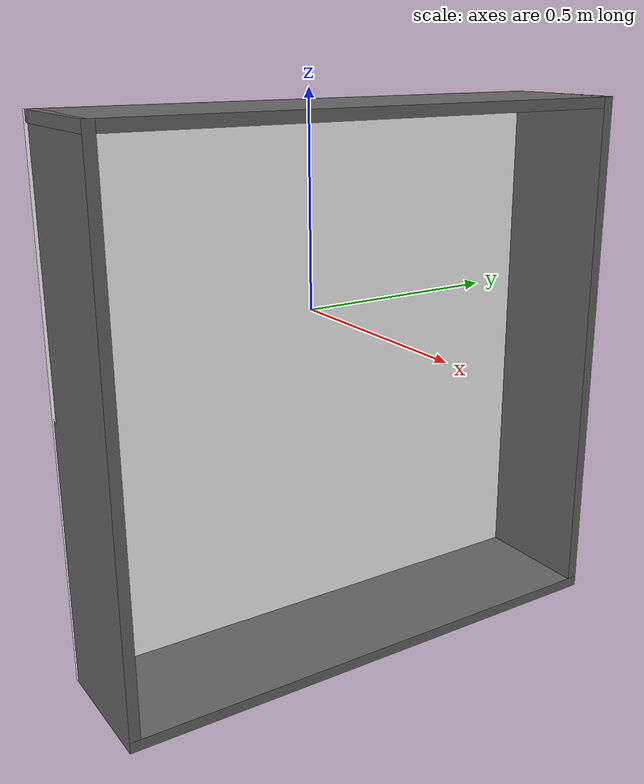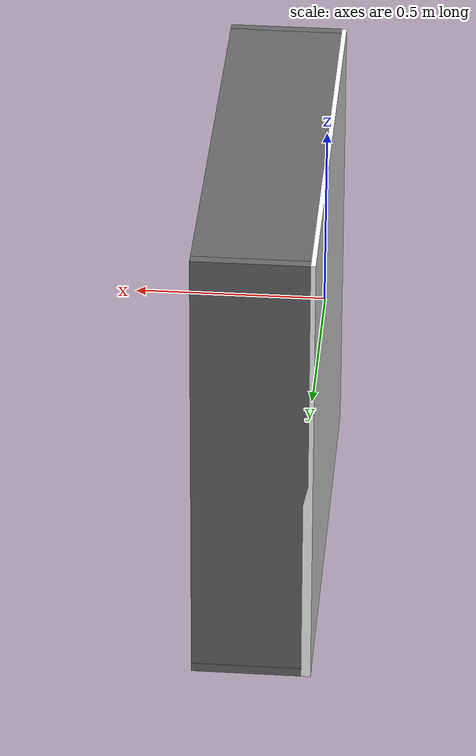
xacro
<?xml version="1.0" ?>
<!-- |    This document was autogenerated by xacro from panda_arm_hand.urdf.xacro      | -->
<!-- |    EDITING THIS FILE BY HAND IS NOT RECOMMENDED                                 | -->

<robot name="shelf" xmlns:xacro="http://www.ros.org/wiki/xacro">

<xacro:property name="side_length" value="1.25" />
<xacro:property name="wall_width" value=".025" />
<xacro:property name="depth" value=".3" />
<xacro:property name="side_offset" value="${side_length/2-wall_width/2}" />

<xacro:macro name="side_shape">
    <geometry>
        <box size="${depth} ${side_length} ${wall_width}"/>
      </geometry>
</xacro:macro>

<xacro:macro name="back_shape">
    <geometry>
        <box size="${side_length} ${side_length} ${wall_width}"/>
      </geometry>
</xacro:macro>

  <link name="center"/>

  <link name="back">
    <visual>
      <xacro:back_shape />
      <material name="back"/>
    </visual>
    <collision>
      <xacro:back_shape />
      <material name="back"/>
    </collision>
  </link>

  <link name="right">
    <visual>
      <xacro:side_shape />
      <material name="side"/>
    </visual>
    <collision>
      <xacro:side_shape />
      <material name="side"/>
    </collision>
  </link>

  <link name="left">
  <visual>
    <xacro:side_shape />
    <material name="side"/>
  </visual>
  <collision>
    <xacro:side_shape />
    <material name="side"/>
  </collision>
  </link>

  <link name="bottom">
  <visual>
    <xacro:side_shape />
    <material name="side"/>
  </visual>
  <collision>
    <xacro:side_shape />
    <material name="side"/>
  </collision>
  </link>

  <link name="top">
  <visual>
    <xacro:side_shape />
    <material name="side"/>
  </visual>
  <collision>
    <xacro:side_shape />
    <material name="side"/>
  </collision>
  </link>

  <joint name="center_base_joint" type="fixed">
    <parent link="center"/>
    <child link="back"/>
    <origin xyz="0 0 ${-depth/2}" rpy="0 1.5708 0"/>
  </joint>

  <joint name="right_joint" type="fixed">
    <parent link="back"/>
    <child link="right"/>
    <origin xyz="0 ${side_offset} ${depth/2}" rpy="1.5708 1.5708 0 "/>
  </joint>

   <joint name="left_joint" type="fixed">
    <parent link="back"/>
    <child link="left"/>
    <origin xyz="0 ${-side_offset} ${depth/2}" rpy="1.5708 1.5708 0 "/>
  </joint>

   <joint name="bottom_joint" type="fixed">
    <parent link="back"/>
    <child link="bottom"/>
    <origin xyz="${side_offset}  0 ${depth/2}" rpy="0 1.5708 0 "/>
  </joint>

   <joint name="top_joint" type="fixed">
    <parent link="back"/>
    <child link="top"/>
    <origin xyz="${-side_offset} 0 ${depth/2}" rpy="0 1.5708 0 "/>
  </joint>

  <material name="back">
    <color rgba="1. 1. 1. 1."/>
  </material>

    <material name="side">
    <color rgba=".4 .4 .4 1."/>
  </material>
 </robot>
